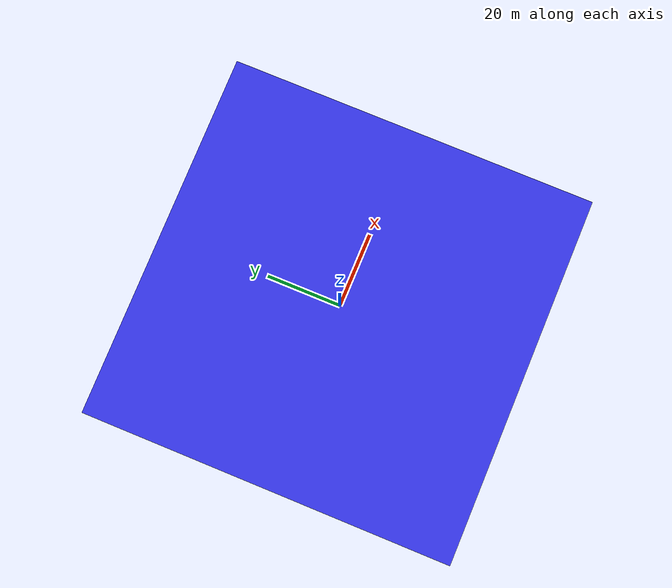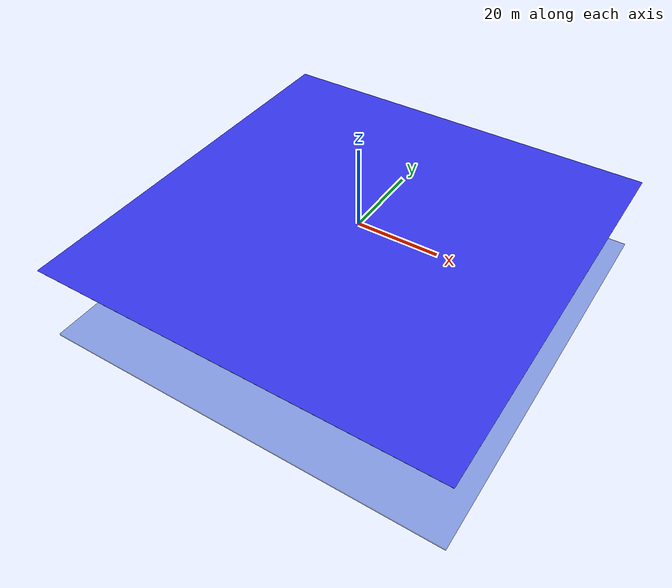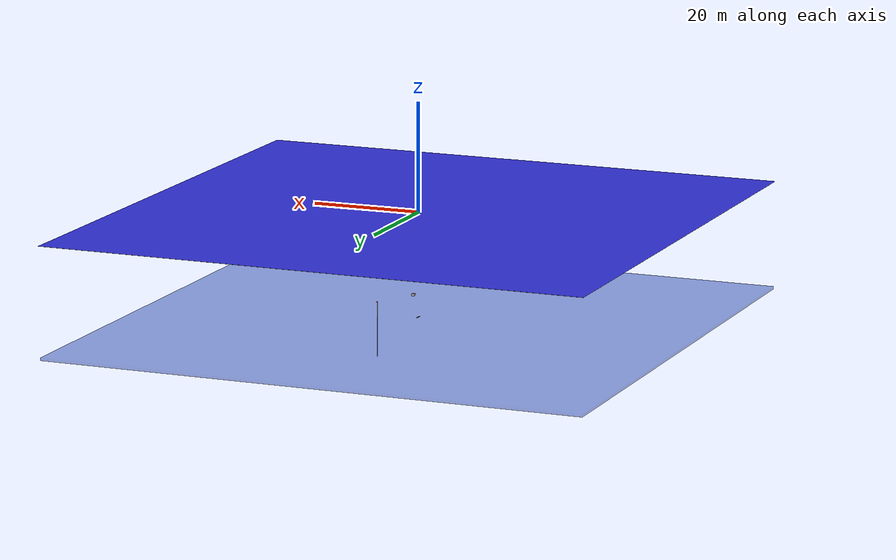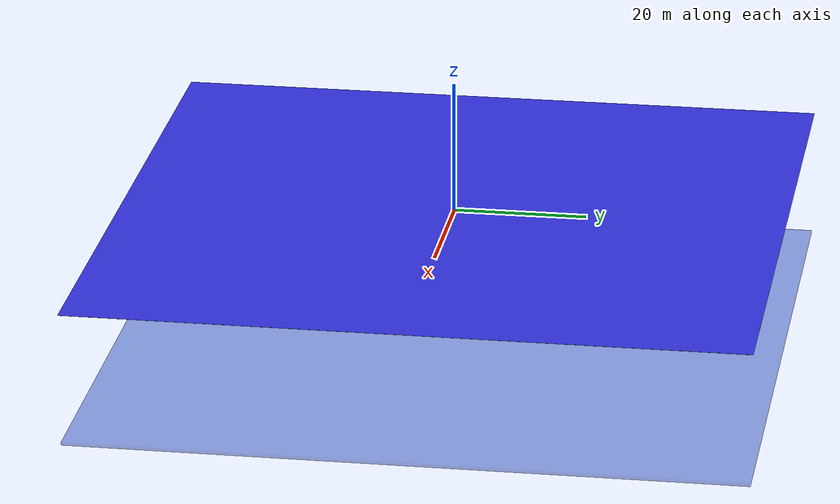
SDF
<sdf version="1.5">
 <world name="default">
  <light name="illum" type="point">
   <pose>5 5 -10 0 0 0</pose>
   <diffuse>0.4 0.8 0.8 1</diffuse>
   <attenuation><constant>1</constant></attenuation>
  </light>
  <include><uri>model://sun</uri></include>
  <model name="ceiling_plane">
   <static>true</static>
   <link name="link">
    <visual name="visual">
     <cast_shadows>false</cast_shadows>
     <geometry><box><size>100 100 .02</size></box></geometry>
     <material>
      <ambient>0.2 0.2 0.9 1</ambient>
      <diffuse>0.2 0.2 0.9 1</diffuse>
      <specular>0.1 0.1 0.3 1</specular>
      <emissive>0 0 0 0</emissive>
     </material>
    </visual>
   </link>
  </model>
  <model name="bottom_plane">
   <static>true</static>
   <pose>0 0 -20 0 0 0</pose>
   <link name="link">
    <collision name="collision"><geometry><box><size>500 500 .5</size></box></geometry></collision>
    <visual name="visual">
     <cast_shadows>false</cast_shadows>
     <geometry><box><size>100 100 .5</size></box></geometry>
     <material>
      <script><uri>file://media/materials/scripts/gazebo.material</uri><name>Gazebo/BlueTransparent</name></script>
     </material>
    </visual>
   </link>
  </model>
  <model name="channel_marker">
   <static>true</static>
   <link name="shape">
    <collision name="box_collision">
     <pose>0 0 -19 0 0 1.5707</pose>
     <geometry><box><size>1.2 .15 .05</size></box></geometry>
    </collision>
    <visual name="visual">
     <pose>0 0 -19 0 0 1.5707</pose>
     <geometry><box><size>1.2 .15 .05</size></box></geometry>
     <material>
      <ambient>0.35294118  0.25098039  0.14509804 1</ambient>
      <diffuse>0.35294118  0.25098039  0.14509804 1</diffuse>
      <specular>0.1 0.1 0.1 1</specular>
      <emissive>0 0 0 0</emissive>
     </material>
    </visual>
   </link>
  </model>
  <model name="buoy">
   <static>true</static>
   <pose>8 0 -17 0 0 0</pose>
   <link name="body">
    <collision name="bodycol"><geometry><sphere><radius>.11</radius></sphere></geometry></collision>
    <visual name="bodyvisual">
     <geometry><sphere><radius>.11</radius></sphere></geometry>
     <material>
      <ambient>0.9 0.1 0.1 1</ambient>
      <diffuse>0.9 0.1 0.1 1</diffuse>
      <specular>0.3 0.1 0.1 1</specular>
      <emissive>0 0 0 0</emissive>
     </material>
    </visual>
    <visual name="bodyvisual">
     <pose>0 0 -5 0 0 0</pose>
     <geometry><cylinder><radius>.02</radius><length>10</length></cylinder></geometry>
     <material>
      <ambient>0.9 0.9 0.9 1</ambient>
      <diffuse>0.9 0.9 0.9 1</diffuse>
      <specular>0.1 0.1 0.1 1</specular>
      <emissive>0 0 0 0</emissive>
     </material>
    </visual>
   </link>
  </model>
  <model name="sub8">
   <pose>1.0 0.0 -15 0 0 0</pose>
   <link name="base_link">
    <velocity_decay><linear>0.01</linear><angular>0.1</angular></velocity_decay>
    <inertial>
     <mass>36.29</mass>
     <inertia>
      <ixx>1.18</ixx>
      <ixy>-0.003</ixy>
      <ixz>0.04</ixz>
      <iyy>1.431</iyy>
      <iyz>-0.034</iyz>
      <izz>1.262</izz>
     </inertia>
    </inertial>
    <collision name="box_collision">
     <pose>0 0 0 0 0 1.5707</pose>
     <geometry><box><size>.5588 .5588 .381</size></box></geometry>
    </collision>
    <visual name="visual">
     <pose>0 0 0 0 0 1.5707</pose>
     <geometry><box><size>.5588 .5588 .381</size></box></geometry>
    </visual>
    <sensor name="left_camera" type="camera">
     <camera>
      <pose>0.2559 0.0445 0.01707 0 0 0</pose>
      <horizontal_fov>1.047</horizontal_fov>
      <image><width>640</width><height>480</height></image>
      <clip><near>0.1</near><far>20</far></clip>
      <distortion><k1>0</k1><k2>0</k2><k3>0</k3><p1>0</p1><p2>0</p2></distortion>
     </camera>
     <plugin name="camera_controller" filename="libgazebo_ros_camera.so">
      <alwaysOn>true</alwaysOn>
      <updateRate>15</updateRate>
      <cameraName>stereo/left</cameraName>
      <imageTopicName>image_raw</imageTopicName>
      <cameraInfoTopicName>camera_info</cameraInfoTopicName>
      <frameName>stereo_front</frameName>
      <hackBaseline>0.089</hackBaseline>
      <distortionK1>0</distortionK1>
      <distortionK2>0</distortionK2>
      <distortionK3>0</distortionK3>
      <distortionT1>0</distortionT1>
      <distortionT2>0</distortionT2>
     </plugin>
    </sensor>
    <sensor name="right_camera" type="camera">
     <camera>
      <pose>0.2559 -0.0445 0.01707 0 0 0</pose>
      <horizontal_fov>1.047</horizontal_fov>
      <image><width>640</width><height>480</height></image>
      <clip><near>0.1</near><far>20</far></clip>
      <distortion><k1>0</k1><k2>0</k2><k3>0</k3><p1>0</p1><p2>0</p2></distortion>
     </camera>
     <plugin name="camera_controller" filename="libgazebo_ros_camera.so">
      <alwaysOn>true</alwaysOn>
      <updateRate>15</updateRate>
      <cameraName>stereo/right</cameraName>
      <imageTopicName>image_raw</imageTopicName>
      <cameraInfoTopicName>camera_info</cameraInfoTopicName>
      <frameName>stereo_front</frameName>
      <hackBaseline>0.089</hackBaseline>
      <distortionK1>0</distortionK1>
      <distortionK2>0</distortionK2>
      <distortionK3>0</distortionK3>
      <distortionT1>0</distortionT1>
      <distortionT2>0</distortionT2>
     </plugin>
    </sensor>
    <sensor name="down_camera" type="camera">
     <camera>
      <pose>0.0537 0.1048 -0.2565  0 1.57 3.1415</pose>
      <horizontal_fov>1.047</horizontal_fov>
      <image><width>640</width><height>480</height></image>
      <clip><near>0.1</near><far>20</far></clip>
      <distortion><k1>0</k1><k2>0</k2><k3>0</k3><p1>0</p1><p2>0</p2><center>320 240</center></distortion>
     </camera>
     <plugin name="camera_controller" filename="libgazebo_ros_camera.so">
      <alwaysOn>true</alwaysOn>
      <updateRate>15</updateRate>
      <cameraName>down/left</cameraName>
      <imageTopicName>image_raw</imageTopicName>
      <cameraInfoTopicName>camera_info</cameraInfoTopicName>
      <frameName>down_camera</frameName>
      <hackBaseline>0.89</hackBaseline>
      <distortionK1>0</distortionK1>
      <distortionK2>0</distortionK2>
      <distortionK3>0</distortionK3>
      <distortionT1>0</distortionT1>
      <distortionT2>0</distortionT2>
      <Cx>320</Cx>
      <Cy>240</Cy>
     </plugin>
    </sensor>
   </link>
   <plugin name="sub8_buoyancy" filename="libsub8_buoyancy.so">
    <fluid_density>1000</fluid_density>
    <drag_coefficient>20</drag_coefficient>
    <link name="base_link"><center_of_volume>0 0 0</center_of_volume><volume>0.037</volume></link>
   </plugin>
   <plugin name="sub8_thrusters" filename="libsub8_thrusters.so">
    <layout_param>thrusters</layout_param>
    <link>base_link</link>
   </plugin>
  </model>
 </world>
</sdf>
